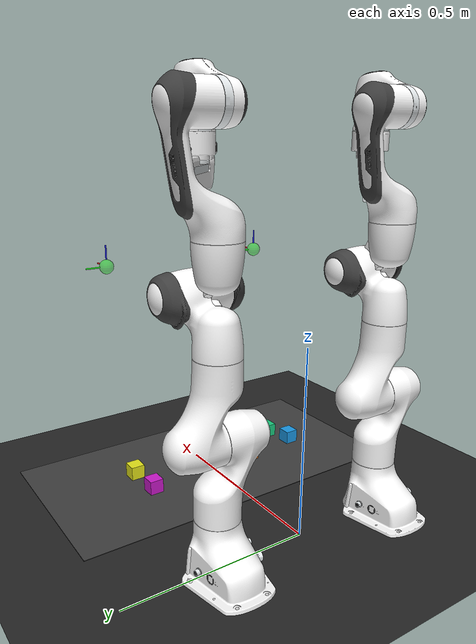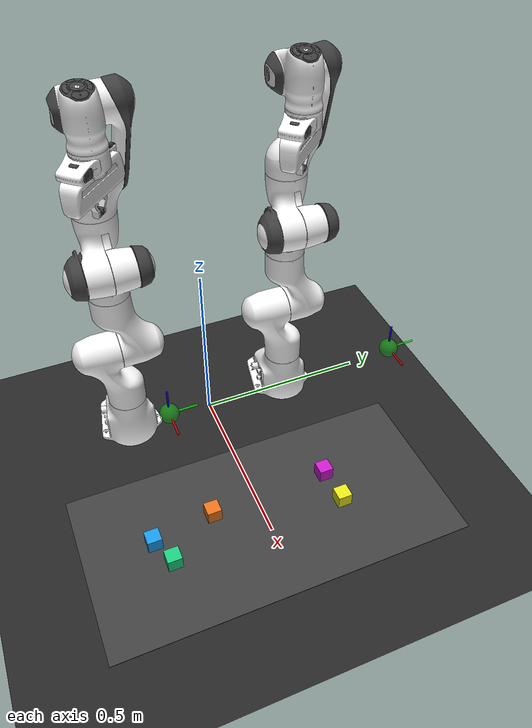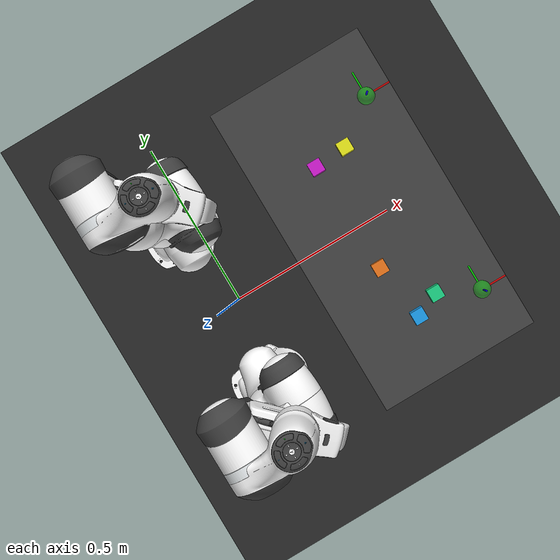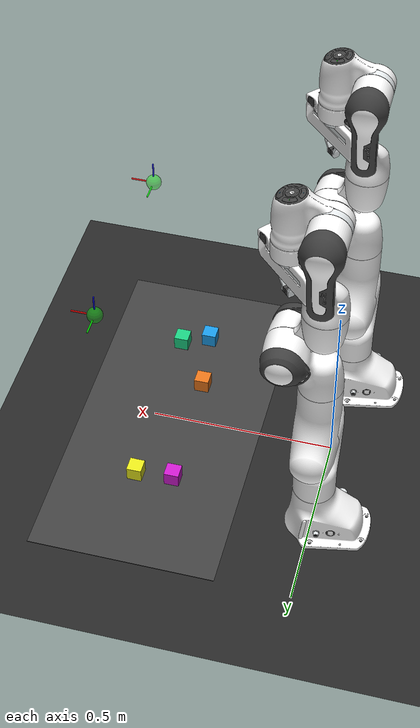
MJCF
<mujoco model="franka_panda_industrial_teleop">
    <compiler angle="radian" meshdir="franka_emika_panda/assets" autolimits="true"/>
    <option integrator="implicitfast" timestep="0.002"/>

    <default>
    <default class="panda">
      <material specular="0.5" shininess="0.25" />
      <joint armature="0.1" damping="1" axis="0 0 1" range="-2.8973 2.8973" />
      <general dyntype="none" biastype="affine" ctrlrange="-2.8973 2.8973" forcerange="-87 87" />
      <default class="finger">
        <joint axis="0 1 0" type="slide" range="0 0.04" limited="true" damping="0.05" armature="0.001" solimplimit="0.99 0.999 0.001" solreflimit="0.001 1" />
      </default>

      <default class="visual">
        <geom type="mesh" contype="0" conaffinity="0" group="2" />
      </default>
      <default class="collision">
        <geom type="mesh" group="3" />
        <default class="fingertip_pad_collision_1">
          <geom type="box" size="0.0085 0.004 0.0085" pos="0 0.0055 0.0445" />
        </default>
        <default class="fingertip_pad_collision_2">
          <geom type="box" size="0.003 0.002 0.003" pos="0.0055 0.002 0.05" />
        </default>
        <default class="fingertip_pad_collision_3">
          <geom type="box" size="0.003 0.002 0.003" pos="-0.0055 0.002 0.05" />
        </default>
        <default class="fingertip_pad_collision_4">
          <geom type="box" size="0.003 0.002 0.0035" pos="0.0055 0.002 0.0395" />
        </default>
        <default class="fingertip_pad_collision_5">
          <geom type="box" size="0.003 0.002 0.0035" pos="-0.0055 0.002 0.0395" />
        </default>
      </default>
    </default>
  </default>

    <asset>
    <material class="panda" name="white" rgba="1 1 1 1" />
    <material class="panda" name="off_white" rgba="0.901961 0.921569 0.929412 1" />
    <material class="panda" name="black" rgba="0.25 0.25 0.25 1" />
    <material class="panda" name="green" rgba="0 1 0 1" />
    <material class="panda" name="light_blue" rgba="0.039216 0.541176 0.780392 1" />

    <mesh name="link0_c" file="link0.stl" />
    <mesh name="link1_c" file="link1.stl" />
    <mesh name="link2_c" file="link2.stl" />
    <mesh name="link3_c" file="link3.stl" />
    <mesh name="link4_c" file="link4.stl" />
    <mesh name="link5_c0" file="link5_collision_0.obj" />
    <mesh name="link5_c1" file="link5_collision_1.obj" />
    <mesh name="link5_c2" file="link5_collision_2.obj" />
    <mesh name="link6_c" file="link6.stl" />
    <mesh name="link7_c" file="link7.stl" />
    <mesh name="hand_c" file="hand.stl" />

    <mesh file="link0_0.obj" />
    <mesh file="link0_1.obj" />
    <mesh file="link0_2.obj" />
    <mesh file="link0_3.obj" />
    <mesh file="link0_4.obj" />
    <mesh file="link0_5.obj" />
    <mesh file="link0_7.obj" />
    <mesh file="link0_8.obj" />
    <mesh file="link0_9.obj" />
    <mesh file="link0_10.obj" />
    <mesh file="link0_11.obj" />
    <mesh file="link1.obj" />
    <mesh file="link2.obj" />
    <mesh file="link3_0.obj" />
    <mesh file="link3_1.obj" />
    <mesh file="link3_2.obj" />
    <mesh file="link3_3.obj" />
    <mesh file="link4_0.obj" />
    <mesh file="link4_1.obj" />
    <mesh file="link4_2.obj" />
    <mesh file="link4_3.obj" />
    <mesh file="link5_0.obj" />
    <mesh file="link5_1.obj" />
    <mesh file="link5_2.obj" />
    <mesh file="link6_0.obj" />
    <mesh file="link6_1.obj" />
    <mesh file="link6_2.obj" />
    <mesh file="link6_3.obj" />
    <mesh file="link6_4.obj" />
    <mesh file="link6_5.obj" />
    <mesh file="link6_6.obj" />
    <mesh file="link6_7.obj" />
    <mesh file="link6_8.obj" />
    <mesh file="link6_9.obj" />
    <mesh file="link6_10.obj" />
    <mesh file="link6_11.obj" />
    <mesh file="link6_12.obj" />
    <mesh file="link6_13.obj" />
    <mesh file="link6_14.obj" />
    <mesh file="link6_15.obj" />
    <mesh file="link6_16.obj" />
    <mesh file="link7_0.obj" />
    <mesh file="link7_1.obj" />
    <mesh file="link7_2.obj" />
    <mesh file="link7_3.obj" />
    <mesh file="link7_4.obj" />
    <mesh file="link7_5.obj" />
    <mesh file="link7_6.obj" />
    <mesh file="link7_7.obj" />
    <mesh file="hand_0.obj" />
    <mesh file="hand_1.obj" />
    <mesh file="hand_2.obj" />
    <mesh file="hand_3.obj" />
    <mesh file="hand_4.obj" />
    <mesh file="finger_0.obj" />
    <mesh file="finger_1.obj" />
  </asset>

    <worldbody>
        <light pos="0 0 3" dir="0 0 -1" directional="true" castshadow="true"/>
        <geom name="floor" type="plane" size="2 2 0.1" rgba="0.15 0.15 0.15 1.0"/>

        <!-- Manipulation Workspace Table (Surface at Z = 0) -->
        <body name="table" pos="0.45 0.0 0.0">
            <geom name="table_top" type="box" size="0.25 0.50 0.01" pos="0 0 -0.01" rgba="0.25 0.25 0.25 1.0"/>
        </body>

        <!-- Manipulation Cube Object 0 -->
        <body name="cube_0" pos="0.397 -0.132 0.02">
            <joint name="cube_joint_0" type="free"/>
            <geom name="cube_geom_0" type="box" size="0.02 0.02 0.02" rgba="0.9 0.45 0.1 1.0" mass="0.05" condim="6" friction="1.0 0.005 0.0001"/>
        </body>
        <!-- Manipulation Cube Object 1 -->
        <body name="cube_1" pos="0.422 -0.308 0.02">
            <joint name="cube_joint_1" type="free"/>
            <geom name="cube_geom_1" type="box" size="0.02 0.02 0.02" rgba="0.1 0.6 0.9 1.0" mass="0.05" condim="6" friction="1.0 0.005 0.0001"/>
        </body>
        <!-- Manipulation Cube Object 2 -->
        <body name="cube_2" pos="0.388 0.211 0.02">
            <joint name="cube_joint_2" type="free"/>
            <geom name="cube_geom_2" type="box" size="0.02 0.02 0.02" rgba="0.8 0.1 0.8 1.0" mass="0.05" condim="6" friction="1.0 0.005 0.0001"/>
        </body>
        <!-- Manipulation Cube Object 3 -->
        <body name="cube_3" pos="0.489 0.219 0.02">
            <joint name="cube_joint_3" type="free"/>
            <geom name="cube_geom_3" type="box" size="0.02 0.02 0.02" rgba="0.9 0.9 0.1 1.0" mass="0.05" condim="6" friction="1.0 0.005 0.0001"/>
        </body>
        <!-- Manipulation Cube Object 4 -->
        <body name="cube_4" pos="0.496 -0.276 0.02">
            <joint name="cube_joint_4" type="free"/>
            <geom name="cube_geom_4" type="box" size="0.02 0.02 0.02" rgba="0.1 0.8 0.5 1.0" mass="0.05" condim="6" friction="1.0 0.005 0.0001"/>
        </body>

        <body name="link0_left" childclass="panda" pos="0 0.25 0.0"><inertial mass="0.629769" pos="-0.041018 -0.00014 0.049974" fullinertia="0.00315 0.00388 0.004285 8.2904e-7 0.00015 8.2299e-6" /><geom mesh="link0_0" material="off_white" class="visual" /><geom mesh="link0_1" material="black" class="visual" /><geom mesh="link0_2" material="off_white" class="visual" /><geom mesh="link0_3" material="black" class="visual" /><geom mesh="link0_4" material="off_white" class="visual" /><geom mesh="link0_5" material="black" class="visual" /><geom mesh="link0_7" material="white" class="visual" /><geom mesh="link0_8" material="white" class="visual" /><geom mesh="link0_9" material="black" class="visual" /><geom mesh="link0_10" material="off_white" class="visual" /><geom mesh="link0_11" material="white" class="visual" /><geom mesh="link0_c" class="collision" /><body name="link1_left" pos="0 0 0.333"><inertial mass="4.970684" pos="0.003875 0.002081 -0.04762" fullinertia="0.70337 0.70661 0.0091170 -0.00013900 0.0067720 0.019169" /><joint name="joint1_left" /><geom material="white" mesh="link1" class="visual" /><geom mesh="link1_c" class="collision" /><body name="link2_left" quat="1 -1 0 0"><inertial mass="0.646926" pos="-0.003141 -0.02872 0.003495" fullinertia="0.0079620 2.8110e-2 2.5995e-2 -3.925e-3 1.0254e-2 7.04e-4" /><joint name="joint2_left" range="-1.7628 1.7628" /><geom material="white" mesh="link2" class="visual" /><geom mesh="link2_c" class="collision" /><body name="link3_left" pos="0 -0.316 0" quat="1 1 0 0"><joint name="joint3_left" /><inertial mass="3.228604" pos="2.7518e-2 3.9252e-2 -6.6502e-2" fullinertia="3.7242e-2 3.6155e-2 1.083e-2 -4.761e-3 -1.1396e-2 -1.2805e-2" /><geom mesh="link3_0" material="white" class="visual" /><geom mesh="link3_1" material="white" class="visual" /><geom mesh="link3_2" material="white" class="visual" /><geom mesh="link3_3" material="black" class="visual" /><geom mesh="link3_c" class="collision" /><body name="link4_left" pos="0.0825 0 0" quat="1 1 0 0"><inertial mass="3.587895" pos="-5.317e-2 1.04419e-1 2.7454e-2" fullinertia="2.5853e-2 1.9552e-2 2.8323e-2 7.796e-3 -1.332e-3 8.641e-3" /><joint name="joint4_left" range="-3.0718 -0.0698" /><geom mesh="link4_0" material="white" class="visual" /><geom mesh="link4_1" material="white" class="visual" /><geom mesh="link4_2" material="black" class="visual" /><geom mesh="link4_3" material="white" class="visual" /><geom mesh="link4_c" class="collision" /><body name="link5_left" pos="-0.0825 0.384 0" quat="1 -1 0 0"><inertial mass="1.225946" pos="-1.1953e-2 4.1065e-2 -3.8437e-2" fullinertia="3.5549e-2 2.9474e-2 8.627e-3 -2.117e-3 -4.037e-3 2.29e-4" /><joint name="joint5_left" /><geom mesh="link5_0" material="black" class="visual" /><geom mesh="link5_1" material="white" class="visual" /><geom mesh="link5_2" material="white" class="visual" /><geom mesh="link5_c0" class="collision" /><geom mesh="link5_c1" class="collision" /><geom mesh="link5_c2" class="collision" /><body name="link6_left" quat="1 1 0 0"><inertial mass="1.666555" pos="6.0149e-2 -1.4117e-2 -1.0517e-2" fullinertia="1.964e-3 4.354e-3 5.433e-3 1.09e-4 -1.158e-3 3.41e-4" /><joint name="joint6_left" range="-0.0175 3.7525" /><geom mesh="link6_0" material="off_white" class="visual" /><geom mesh="link6_1" material="white" class="visual" /><geom mesh="link6_2" material="black" class="visual" /><geom mesh="link6_3" material="white" class="visual" /><geom mesh="link6_4" material="white" class="visual" /><geom mesh="link6_5" material="white" class="visual" /><geom mesh="link6_6" material="white" class="visual" /><geom mesh="link6_7" material="light_blue" class="visual" /><geom mesh="link6_8" material="light_blue" class="visual" /><geom mesh="link6_9" material="black" class="visual" /><geom mesh="link6_10" material="black" class="visual" /><geom mesh="link6_11" material="white" class="visual" /><geom mesh="link6_12" material="green" class="visual" /><geom mesh="link6_13" material="white" class="visual" /><geom mesh="link6_14" material="black" class="visual" /><geom mesh="link6_15" material="black" class="visual" /><geom mesh="link6_16" material="white" class="visual" /><geom mesh="link6_c" class="collision" /><body name="link7_left" pos="0.088 0 0" quat="1 1 0 0"><inertial mass="7.35522e-01" pos="1.0517e-2 -4.252e-3 6.1597e-2" fullinertia="1.2516e-2 1.0027e-2 4.815e-3 -4.28e-4 -1.196e-3 -7.41e-4" /><joint name="joint7_left" /><geom mesh="link7_0" material="white" class="visual" /><geom mesh="link7_1" material="black" class="visual" /><geom mesh="link7_2" material="black" class="visual" /><geom mesh="link7_3" material="black" class="visual" /><geom mesh="link7_4" material="black" class="visual" /><geom mesh="link7_5" material="black" class="visual" /><geom mesh="link7_6" material="black" class="visual" /><geom mesh="link7_7" material="white" class="visual" /><geom mesh="link7_c" class="collision" /><body name="hand_left" pos="0 0 0.107" quat="0.9238795 0 0 -0.3826834"><inertial mass="0.73" pos="-0.01 0 0.03" diaginertia="0.001 0.0025 0.0017" /><geom mesh="hand_0" material="off_white" class="visual" /><geom mesh="hand_1" material="black" class="visual" /><geom mesh="hand_2" material="black" class="visual" /><geom mesh="hand_3" material="white" class="visual" /><geom mesh="hand_4" material="off_white" class="visual" /><geom mesh="hand_c" class="collision" /><body name="left_finger_left" pos="0 0 0.0584"><inertial mass="0.015" pos="0 0 0" diaginertia="2.375e-6 2.375e-6 7.5e-7" /><joint name="finger_joint1_left" class="finger" /><geom mesh="finger_0" material="off_white" class="visual" /><geom mesh="finger_1" material="black" class="visual" /><geom mesh="finger_0" class="collision" /><geom class="fingertip_pad_collision_1" /><geom class="fingertip_pad_collision_2" /><geom class="fingertip_pad_collision_3" /><geom class="fingertip_pad_collision_4" /><geom class="fingertip_pad_collision_5" /></body><body name="right_finger_left" pos="0 0 0.0584" quat="0 0 0 1"><inertial mass="0.015" pos="0 0 0" diaginertia="2.375e-6 2.375e-6 7.5e-7" /><joint name="finger_joint2_left" class="finger" /><geom mesh="finger_0" material="off_white" class="visual" /><geom mesh="finger_1" material="black" class="visual" /><geom mesh="finger_0" class="collision" /><geom class="fingertip_pad_collision_1" /><geom class="fingertip_pad_collision_2" /><geom class="fingertip_pad_collision_3" /><geom class="fingertip_pad_collision_4" /><geom class="fingertip_pad_collision_5" /></body></body></body></body></body></body></body></body></body></body>
        <body name="link0_right" childclass="panda" pos="0 -0.25 0.0"><inertial mass="0.629769" pos="-0.041018 -0.00014 0.049974" fullinertia="0.00315 0.00388 0.004285 8.2904e-7 0.00015 8.2299e-6" /><geom mesh="link0_0" material="off_white" class="visual" /><geom mesh="link0_1" material="black" class="visual" /><geom mesh="link0_2" material="off_white" class="visual" /><geom mesh="link0_3" material="black" class="visual" /><geom mesh="link0_4" material="off_white" class="visual" /><geom mesh="link0_5" material="black" class="visual" /><geom mesh="link0_7" material="white" class="visual" /><geom mesh="link0_8" material="white" class="visual" /><geom mesh="link0_9" material="black" class="visual" /><geom mesh="link0_10" material="off_white" class="visual" /><geom mesh="link0_11" material="white" class="visual" /><geom mesh="link0_c" class="collision" /><body name="link1_right" pos="0 0 0.333"><inertial mass="4.970684" pos="0.003875 0.002081 -0.04762" fullinertia="0.70337 0.70661 0.0091170 -0.00013900 0.0067720 0.019169" /><joint name="joint1_right" /><geom material="white" mesh="link1" class="visual" /><geom mesh="link1_c" class="collision" /><body name="link2_right" quat="1 -1 0 0"><inertial mass="0.646926" pos="-0.003141 -0.02872 0.003495" fullinertia="0.0079620 2.8110e-2 2.5995e-2 -3.925e-3 1.0254e-2 7.04e-4" /><joint name="joint2_right" range="-1.7628 1.7628" /><geom material="white" mesh="link2" class="visual" /><geom mesh="link2_c" class="collision" /><body name="link3_right" pos="0 -0.316 0" quat="1 1 0 0"><joint name="joint3_right" /><inertial mass="3.228604" pos="2.7518e-2 3.9252e-2 -6.6502e-2" fullinertia="3.7242e-2 3.6155e-2 1.083e-2 -4.761e-3 -1.1396e-2 -1.2805e-2" /><geom mesh="link3_0" material="white" class="visual" /><geom mesh="link3_1" material="white" class="visual" /><geom mesh="link3_2" material="white" class="visual" /><geom mesh="link3_3" material="black" class="visual" /><geom mesh="link3_c" class="collision" /><body name="link4_right" pos="0.0825 0 0" quat="1 1 0 0"><inertial mass="3.587895" pos="-5.317e-2 1.04419e-1 2.7454e-2" fullinertia="2.5853e-2 1.9552e-2 2.8323e-2 7.796e-3 -1.332e-3 8.641e-3" /><joint name="joint4_right" range="-3.0718 -0.0698" /><geom mesh="link4_0" material="white" class="visual" /><geom mesh="link4_1" material="white" class="visual" /><geom mesh="link4_2" material="black" class="visual" /><geom mesh="link4_3" material="white" class="visual" /><geom mesh="link4_c" class="collision" /><body name="link5_right" pos="-0.0825 0.384 0" quat="1 -1 0 0"><inertial mass="1.225946" pos="-1.1953e-2 4.1065e-2 -3.8437e-2" fullinertia="3.5549e-2 2.9474e-2 8.627e-3 -2.117e-3 -4.037e-3 2.29e-4" /><joint name="joint5_right" /><geom mesh="link5_0" material="black" class="visual" /><geom mesh="link5_1" material="white" class="visual" /><geom mesh="link5_2" material="white" class="visual" /><geom mesh="link5_c0" class="collision" /><geom mesh="link5_c1" class="collision" /><geom mesh="link5_c2" class="collision" /><body name="link6_right" quat="1 1 0 0"><inertial mass="1.666555" pos="6.0149e-2 -1.4117e-2 -1.0517e-2" fullinertia="1.964e-3 4.354e-3 5.433e-3 1.09e-4 -1.158e-3 3.41e-4" /><joint name="joint6_right" range="-0.0175 3.7525" /><geom mesh="link6_0" material="off_white" class="visual" /><geom mesh="link6_1" material="white" class="visual" /><geom mesh="link6_2" material="black" class="visual" /><geom mesh="link6_3" material="white" class="visual" /><geom mesh="link6_4" material="white" class="visual" /><geom mesh="link6_5" material="white" class="visual" /><geom mesh="link6_6" material="white" class="visual" /><geom mesh="link6_7" material="light_blue" class="visual" /><geom mesh="link6_8" material="light_blue" class="visual" /><geom mesh="link6_9" material="black" class="visual" /><geom mesh="link6_10" material="black" class="visual" /><geom mesh="link6_11" material="white" class="visual" /><geom mesh="link6_12" material="green" class="visual" /><geom mesh="link6_13" material="white" class="visual" /><geom mesh="link6_14" material="black" class="visual" /><geom mesh="link6_15" material="black" class="visual" /><geom mesh="link6_16" material="white" class="visual" /><geom mesh="link6_c" class="collision" /><body name="link7_right" pos="0.088 0 0" quat="1 1 0 0"><inertial mass="7.35522e-01" pos="1.0517e-2 -4.252e-3 6.1597e-2" fullinertia="1.2516e-2 1.0027e-2 4.815e-3 -4.28e-4 -1.196e-3 -7.41e-4" /><joint name="joint7_right" /><geom mesh="link7_0" material="white" class="visual" /><geom mesh="link7_1" material="black" class="visual" /><geom mesh="link7_2" material="black" class="visual" /><geom mesh="link7_3" material="black" class="visual" /><geom mesh="link7_4" material="black" class="visual" /><geom mesh="link7_5" material="black" class="visual" /><geom mesh="link7_6" material="black" class="visual" /><geom mesh="link7_7" material="white" class="visual" /><geom mesh="link7_c" class="collision" /><body name="hand_right" pos="0 0 0.107" quat="0.9238795 0 0 -0.3826834"><inertial mass="0.73" pos="-0.01 0 0.03" diaginertia="0.001 0.0025 0.0017" /><geom mesh="hand_0" material="off_white" class="visual" /><geom mesh="hand_1" material="black" class="visual" /><geom mesh="hand_2" material="black" class="visual" /><geom mesh="hand_3" material="white" class="visual" /><geom mesh="hand_4" material="off_white" class="visual" /><geom mesh="hand_c" class="collision" /><body name="left_finger_right" pos="0 0 0.0584"><inertial mass="0.015" pos="0 0 0" diaginertia="2.375e-6 2.375e-6 7.5e-7" /><joint name="finger_joint1_right" class="finger" /><geom mesh="finger_0" material="off_white" class="visual" /><geom mesh="finger_1" material="black" class="visual" /><geom mesh="finger_0" class="collision" /><geom class="fingertip_pad_collision_1" /><geom class="fingertip_pad_collision_2" /><geom class="fingertip_pad_collision_3" /><geom class="fingertip_pad_collision_4" /><geom class="fingertip_pad_collision_5" /></body><body name="right_finger_right" pos="0 0 0.0584" quat="0 0 0 1"><inertial mass="0.015" pos="0 0 0" diaginertia="2.375e-6 2.375e-6 7.5e-7" /><joint name="finger_joint2_right" class="finger" /><geom mesh="finger_0" material="off_white" class="visual" /><geom mesh="finger_1" material="black" class="visual" /><geom mesh="finger_0" class="collision" /><geom class="fingertip_pad_collision_1" /><geom class="fingertip_pad_collision_2" /><geom class="fingertip_pad_collision_3" /><geom class="fingertip_pad_collision_4" /><geom class="fingertip_pad_collision_5" /></body></body></body></body></body></body></body></body></body></body>

        <!-- Left Mocap Target -->
        <body name="mocap_target_left" mocap="true" pos="0.554 0.25 0.625">
            <geom name="mocap_geom_left" type="sphere" size="0.02" rgba="0 1 0 0.4" contype="0" conaffinity="0"/>
            <geom type="cylinder" size="0.002" fromto="0 0 0 0.06 0 0" rgba="1 0 0 0.8" contype="0" conaffinity="0"/>
            <geom type="cylinder" size="0.002" fromto="0 0 0 0 0.06 0" rgba="0 1 0 0.8" contype="0" conaffinity="0"/>
            <geom type="cylinder" size="0.002" fromto="0 0 0 0 0 0.06" rgba="0 0 1 0.8" contype="0" conaffinity="0"/>
        </body>

        <!-- Right Mocap Target -->
        <body name="mocap_target_right" mocap="true" pos="0.554 -0.25 0.625">
            <geom name="mocap_geom_right" type="sphere" size="0.02" rgba="0 1 0 0.4" contype="0" conaffinity="0"/>
            <geom type="cylinder" size="0.002" fromto="0 0 0 0.06 0 0" rgba="1 0 0 0.8" contype="0" conaffinity="0"/>
            <geom type="cylinder" size="0.002" fromto="0 0 0 0 0.06 0" rgba="0 1 0 0.8" contype="0" conaffinity="0"/>
            <geom type="cylinder" size="0.002" fromto="0 0 0 0 0 0.06" rgba="0 0 1 0.8" contype="0" conaffinity="0"/>
        </body>
    </worldbody>

    <!-- Weld constraints to drag hands with mocaps -->
    <equality>
        <weld name="teleop_weld_left" body1="hand_left" body2="mocap_target_left" relpose="0 0 0 1 0 0 0" solimp="0.9 0.95 0.001" solref="0.02 1"/>
        <weld name="teleop_weld_right" body1="hand_right" body2="mocap_target_right" relpose="0 0 0 1 0 0 0" solimp="0.9 0.95 0.001" solref="0.02 1"/>
    </equality>

    <!-- Gripper position controllers mapping straight to sliding joints -->
    <actuator>
        <position name="finger_actuator1_left" joint="finger_joint1_left" ctrlrange="0 0.04" kp="100"/>
        <position name="finger_actuator2_left" joint="finger_joint2_left" ctrlrange="0 0.04" kp="100"/>
        <position name="finger_actuator1_right" joint="finger_joint1_right" ctrlrange="0 0.04" kp="100"/>
        <position name="finger_actuator2_right" joint="finger_joint2_right" ctrlrange="0 0.04" kp="100"/>
    </actuator>
</mujoco>
